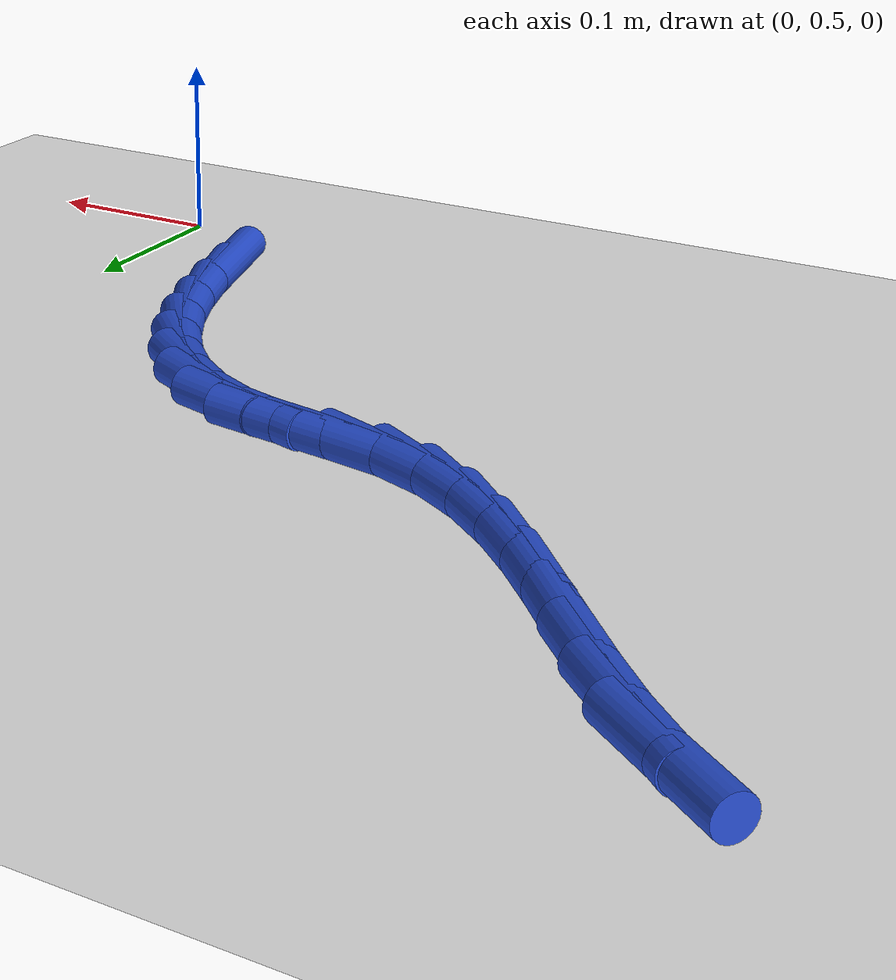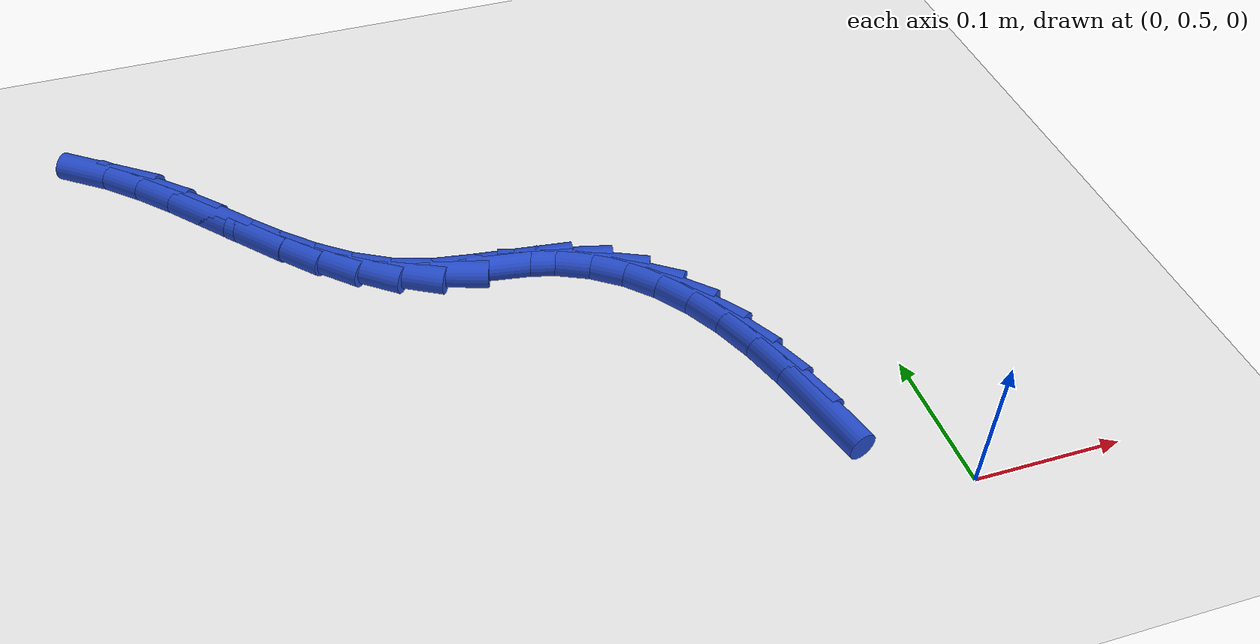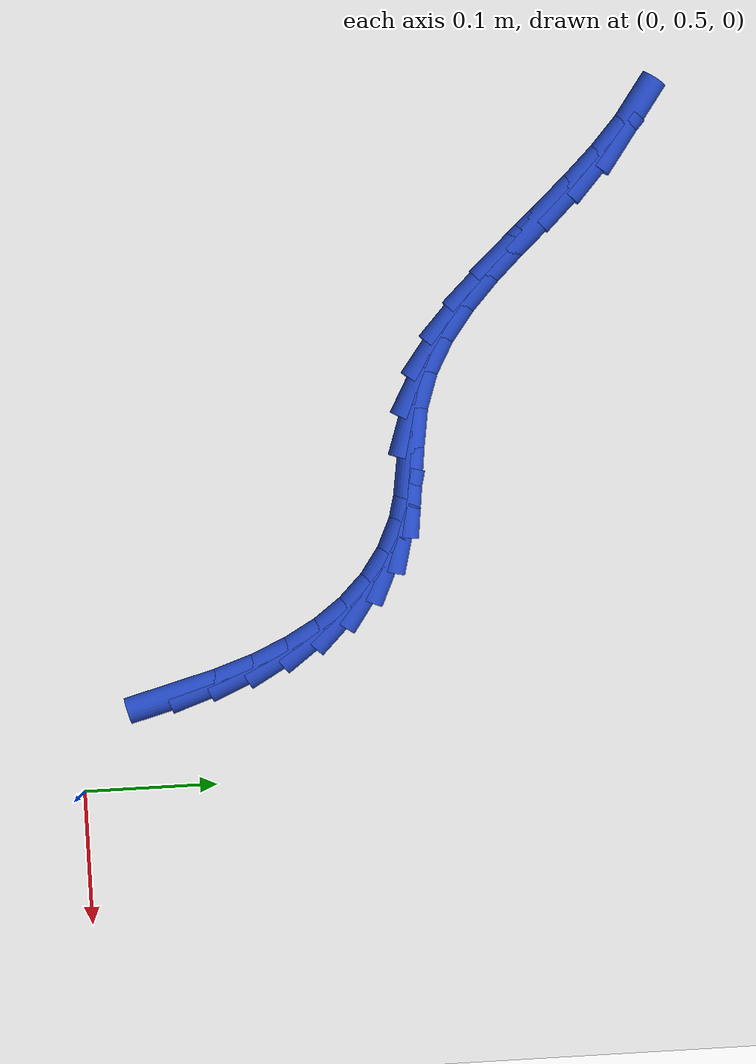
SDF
<sdf version="1.6">
 <world name="default">
  <model name="ground_plane">
   <static>1</static>
   <link name="link">
    <collision name="collision">
     <geometry><plane><normal>0 0 1</normal><size>100 100</size></plane></geometry>
     <surface><friction><ode><mu>100</mu><mu2>50</mu2></ode></friction></surface>
    </collision>
    <visual name="visual">
     <cast_shadows>0</cast_shadows>
     <geometry><plane><normal>0 0 1</normal><size>100 100</size></plane></geometry>
     <material>
      <script><uri>file://media/materials/scripts/gazebo.material</uri><name>Gazebo/WhiteGlow</name></script>
     </material>
    </visual>
   </link>
  </model>
  <model name="line">
   <link name="link_18">
    <pose>-0.06961676831134296 0.575331023241626 0.01 0 1.57 -1.3128715349806683</pose>
    <collision name="collision">
     <geometry><cylinder><radius>0.01</radius><length>0.08</length></cylinder></geometry>
    </collision>
    <visual name="visual">
     <material>
      <script><name>Gazebo/Blue</name><uri>file://media/materials/scripts/gazebo.material</uri></script>
     </material>
     <geometry><cylinder><radius>0.01</radius><length>0.08</length></cylinder></geometry>
    </visual>
   </link>
   <link name="link_19">
    <pose>-0.07774203422021211 0.6061317979738052 0.01 0 1.57 -1.2467907625518801</pose>
    <collision name="collision">
     <geometry><cylinder><radius>0.01</radius><length>0.08</length></cylinder></geometry>
    </collision>
    <visual name="visual">
     <material>
      <script><name>Gazebo/Blue</name><uri>file://media/materials/scripts/gazebo.material</uri></script>
     </material>
     <geometry><cylinder><radius>0.01</radius><length>0.08</length></cylinder></geometry>
    </visual>
   </link>
   <link name="link_20">
    <pose>-0.08744702171279554 0.6350293822296396 0.01 0 1.57 -1.164030238656246</pose>
    <collision name="collision">
     <geometry><cylinder><radius>0.01</radius><length>0.08</length></cylinder></geometry>
    </collision>
    <visual name="visual">
     <material>
      <script><name>Gazebo/Blue</name><uri>file://media/materials/scripts/gazebo.material</uri></script>
     </material>
     <geometry><cylinder><radius>0.01</radius><length>0.08</length></cylinder></geometry>
    </visual>
   </link>
   <link name="link_21">
    <pose>-0.09894030477578336 0.6617088215802092 0.01 0 1.57 -1.0613110632510085</pose>
    <collision name="collision">
     <geometry><cylinder><radius>0.01</radius><length>0.08</length></cylinder></geometry>
    </collision>
    <visual name="visual">
     <material>
      <script><name>Gazebo/Blue</name><uri>file://media/materials/scripts/gazebo.material</uri></script>
     </material>
     <geometry><cylinder><radius>0.01</radius><length>0.08</length></cylinder></geometry>
    </visual>
   </link>
   <link name="link_22">
    <pose>-0.11243045739586567 0.6858551615965937 0.01 0 1.57 -0.9357050187044735</pose>
    <collision name="collision">
     <geometry><cylinder><radius>0.01</radius><length>0.08</length></cylinder></geometry>
    </collision>
    <visual name="visual">
     <material>
      <script><name>Gazebo/Blue</name><uri>file://media/materials/scripts/gazebo.material</uri></script>
     </material>
     <geometry><cylinder><radius>0.01</radius><length>0.08</length></cylinder></geometry>
    </visual>
   </link>
   <link name="link_23">
    <pose>-0.1281260535597327 0.7071534478498729 0.01 0 1.57 -0.7861062455955061</pose>
    <collision name="collision">
     <geometry><cylinder><radius>0.01</radius><length>0.08</length></cylinder></geometry>
    </collision>
    <visual name="visual">
     <material>
      <script><name>Gazebo/Blue</name><uri>file://media/materials/scripts/gazebo.material</uri></script>
     </material>
     <geometry><cylinder><radius>0.01</radius><length>0.08</length></cylinder></geometry>
    </visual>
   </link>
   <link name="link_24">
    <pose>-0.14623566725407453 0.7252887259111266 0.01 0 1.57 -0.615397144577165</pose>
    <collision name="collision">
     <geometry><cylinder><radius>0.01</radius><length>0.08</length></cylinder></geometry>
    </collision>
    <visual name="visual">
     <material>
      <script><name>Gazebo/Blue</name><uri>file://media/materials/scripts/gazebo.material</uri></script>
     </material>
     <geometry><cylinder><radius>0.01</radius><length>0.08</length></cylinder></geometry>
    </visual>
   </link>
   <link name="link_25">
    <pose>-0.16696787246558129 0.7399460413514347 0.01 0 1.57 -0.43202273848234357</pose>
    <collision name="collision">
     <geometry><cylinder><radius>0.01</radius><length>0.08</length></cylinder></geometry>
    </collision>
    <visual name="visual">
     <material>
      <script><name>Gazebo/Blue</name><uri>file://media/materials/scripts/gazebo.material</uri></script>
     </material>
     <geometry><cylinder><radius>0.01</radius><length>0.08</length></cylinder></geometry>
    </visual>
   </link>
   <link name="link_26">
    <pose>-0.1905312431809431 0.7508104397418768 0.01 0 1.57 -0.24878445954260098</pose>
    <collision name="collision">
     <geometry><cylinder><radius>0.01</radius><length>0.08</length></cylinder></geometry>
    </collision>
    <visual name="visual">
     <material>
      <script><name>Gazebo/Blue</name><uri>file://media/materials/scripts/gazebo.material</uri></script>
     </material>
     <geometry><cylinder><radius>0.01</radius><length>0.08</length></cylinder></geometry>
    </visual>
   </link>
   <link name="link_27">
    <pose>-0.21713336743947712 0.7575686436825962 0.01 0 1.57 -0.12048639819023885</pose>
    <collision name="collision">
     <geometry><cylinder><radius>0.01</radius><length>0.08</length></cylinder></geometry>
    </collision>
    <visual name="visual">
     <material>
      <script><name>Gazebo/Blue</name><uri>file://media/materials/scripts/gazebo.material</uri></script>
     </material>
     <geometry><cylinder><radius>0.01</radius><length>0.08</length></cylinder></geometry>
    </visual>
   </link>
   <link name="link_28">
    <pose>-0.24628199617381558 0.761097750838022 0.01 0 1.57 -0.15106599381150962</pose>
    <collision name="collision">
     <geometry><cylinder><radius>0.01</radius><length>0.08</length></cylinder></geometry>
    </collision>
    <visual name="visual">
     <material>
      <script><name>Gazebo/Blue</name><uri>file://media/materials/scripts/gazebo.material</uri></script>
     </material>
     <geometry><cylinder><radius>0.01</radius><length>0.08</length></cylinder></geometry>
    </visual>
   </link>
   <link name="link_29">
    <pose>-0.2755569414976121 0.7655541509729111 0.01 0 1.57 -0.3246735706186334</pose>
    <collision name="collision">
     <geometry><cylinder><radius>0.01</radius><length>0.08</length></cylinder></geometry>
    </collision>
    <visual name="visual">
     <material>
      <script><name>Gazebo/Blue</name><uri>file://media/materials/scripts/gazebo.material</uri></script>
     </material>
     <geometry><cylinder><radius>0.01</radius><length>0.08</length></cylinder></geometry>
    </visual>
   </link>
   <link name="link_30">
    <pose>-0.3027434968607715 0.7747047188407985 0.01 0 1.57 -0.5051651830811787</pose>
    <collision name="collision">
     <geometry><cylinder><radius>0.01</radius><length>0.08</length></cylinder></geometry>
    </collision>
    <visual name="visual">
     <material>
      <script><name>Gazebo/Blue</name><uri>file://media/materials/scripts/gazebo.material</uri></script>
     </material>
     <geometry><cylinder><radius>0.01</radius><length>0.08</length></cylinder></geometry>
    </visual>
   </link>
   <link name="link_31">
    <pose>-0.32775527687636746 0.7885369395594293 0.01 0 1.57 -0.6462684504973066</pose>
    <collision name="collision">
     <geometry><cylinder><radius>0.01</radius><length>0.08</length></cylinder></geometry>
    </collision>
    <visual name="visual">
     <material>
      <script><name>Gazebo/Blue</name><uri>file://media/materials/scripts/gazebo.material</uri></script>
     </material>
     <geometry><cylinder><radius>0.01</radius><length>0.08</length></cylinder></geometry>
    </visual>
   </link>
   <link name="link_32">
    <pose>-0.3510354481746681 0.8060979404471559 0.01 0 1.57 -0.7463234699106328</pose>
    <collision name="collision">
     <geometry><cylinder><radius>0.01</radius><length>0.08</length></cylinder></geometry>
    </collision>
    <visual name="visual">
     <material>
      <script><name>Gazebo/Blue</name><uri>file://media/materials/scripts/gazebo.material</uri></script>
     </material>
     <geometry><cylinder><radius>0.01</radius><length>0.08</length></cylinder></geometry>
    </visual>
   </link>
   <link name="link_33">
    <pose>-0.37302717738594127 0.8264348488223299 0.01 0 1.57 -0.8087966572259719</pose>
    <collision name="collision">
     <geometry><cylinder><radius>0.01</radius><length>0.08</length></cylinder></geometry>
    </collision>
    <visual name="visual">
     <material>
      <script><name>Gazebo/Blue</name><uri>file://media/materials/scripts/gazebo.material</uri></script>
     </material>
     <geometry><cylinder><radius>0.01</radius><length>0.08</length></cylinder></geometry>
    </visual>
   </link>
   <link name="link_34">
    <pose>-0.3941736311404553 0.8485947920033033 0.01 0 1.57 -0.8375675524444928</pose>
    <collision name="collision">
     <geometry><cylinder><radius>0.01</radius><length>0.08</length></cylinder></geometry>
    </collision>
    <visual name="visual">
     <material>
      <script><name>Gazebo/Blue</name><uri>file://media/materials/scripts/gazebo.material</uri></script>
     </material>
     <geometry><cylinder><radius>0.01</radius><length>0.08</length></cylinder></geometry>
    </visual>
   </link>
   <link name="link_35">
    <pose>-0.4149179760684781 0.8716248973084288 0.01 0 1.57 -0.8347943476413795</pose>
    <collision name="collision">
     <geometry><cylinder><radius>0.01</radius><length>0.08</length></cylinder></geometry>
    </collision>
    <visual name="visual">
     <material>
      <script><name>Gazebo/Blue</name><uri>file://media/materials/scripts/gazebo.material</uri></script>
     </material>
     <geometry><cylinder><radius>0.01</radius><length>0.08</length></cylinder></geometry>
    </visual>
   </link>
   <link name="link_36">
    <pose>-0.4357033788002779 0.8945722920560584 0.01 0 1.57 -0.8002688352596079</pose>
    <collision name="collision">
     <geometry><cylinder><radius>0.01</radius><length>0.08</length></cylinder></geometry>
    </collision>
    <visual name="visual">
     <material>
      <script><name>Gazebo/Blue</name><uri>file://media/materials/scripts/gazebo.material</uri></script>
     </material>
     <geometry><cylinder><radius>0.01</radius><length>0.08</length></cylinder></geometry>
    </visual>
   </link>
   <link name="link_37">
    <pose>-0.4569730059661225 0.9164841035645438 0.01 0 1.57 -0.731470386488567</pose>
    <collision name="collision">
     <geometry><cylinder><radius>0.01</radius><length>0.08</length></cylinder></geometry>
    </collision>
    <visual name="visual">
     <material>
      <script><name>Gazebo/Blue</name><uri>file://media/materials/scripts/gazebo.material</uri></script>
     </material>
     <geometry><cylinder><radius>0.01</radius><length>0.08</length></cylinder></geometry>
    </visual>
   </link>
   <link name="link_38">
    <pose>-0.4791700241962805 0.9364074591522377 0.01 0 1.57 -0.6243966374171955</pose>
    <collision name="collision">
     <geometry><cylinder><radius>0.01</radius><length>0.08</length></cylinder></geometry>
    </collision>
    <visual name="visual">
     <material>
      <script><name>Gazebo/Blue</name><uri>file://media/materials/scripts/gazebo.material</uri></script>
     </material>
     <geometry><cylinder><radius>0.01</radius><length>0.08</length></cylinder></geometry>
    </visual>
   </link>
  </model>
 </world>
</sdf>
